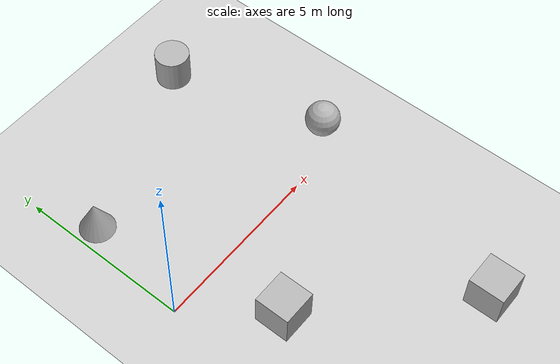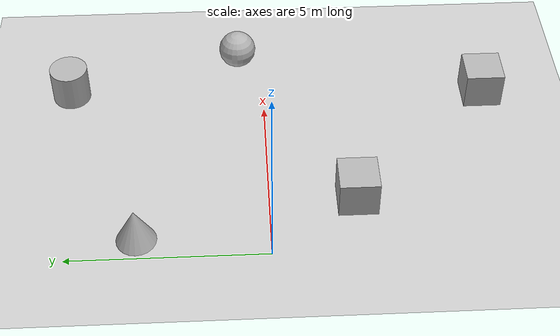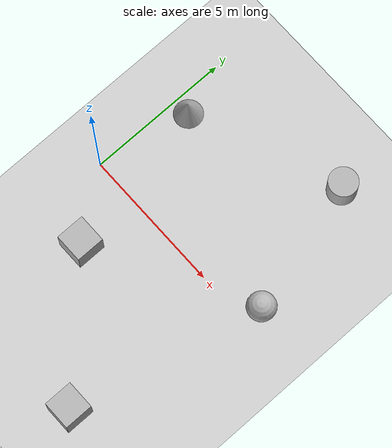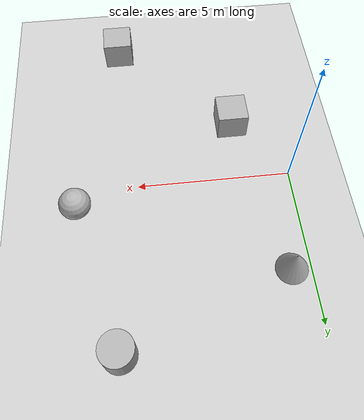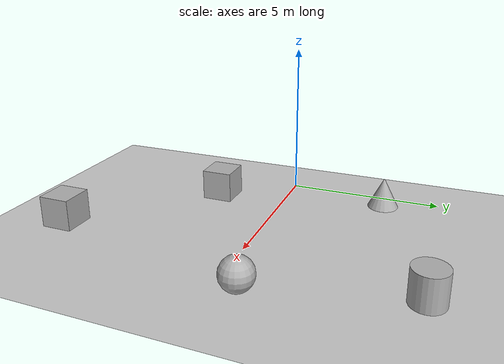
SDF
<sdf version='1.10'>
  <world name='empty'>
    <physics name='1ms' type='ignored'>
      <max_step_size>0.001</max_step_size>
      <real_time_factor>1</real_time_factor>
      <real_time_update_rate>1000</real_time_update_rate>
    </physics>
    <plugin name='gz::sim::systems::Physics' filename='gz-sim-physics-system'/>
    <plugin name='gz::sim::systems::UserCommands' filename='gz-sim-user-commands-system'/>
    <plugin name='gz::sim::systems::SceneBroadcaster' filename='gz-sim-scene-broadcaster-system'/>
    <plugin
      filename="gz-sim-websocket-server-system"
      name="gz::sim::systems::WebsocketServer">
      <port>9002</port>
      <publication_hz>30</publication_hz>
      <max_connections>-1</max_connections>
    </plugin>
    <plugin name='gz::sim::systems::Contact' filename='gz-sim-contact-system'/>
    <plugin name='gz::sim::systems::Sensors' filename='gz-sim-sensors-system'>
      <render_engine>ogre2</render_engine>
    </plugin>
    <gravity>0 0 -9.8000000000000007</gravity>
    <magnetic_field>5.5644999999999998e-06 2.2875799999999999e-05 -4.2388400000000002e-05</magnetic_field>
    <atmosphere type='adiabatic'/>
    <scene>
      <ambient>0.400000006 0.400000006 0.400000006 1</ambient>
      <background>0.699999988 0.699999988 0.699999988 1</background>
      <shadows>true</shadows>
    </scene>
    <model name='ground_plane'>
      <static>true</static>
      <link name='link'>
        <collision name='collision'>
          <geometry>
            <plane>
              <normal>0 0 1</normal>
              <size>100 100</size>
            </plane>
          </geometry>
          <surface>
            <friction>
              <ode>
                <mu>50</mu>
              </ode>
            </friction>
            <bounce/>
            <contact/>
          </surface>
        </collision>
        <visual name='visual'>
          <geometry>
            <plane>
              <normal>0 0 1</normal>
              <size>100 100</size>
            </plane>
          </geometry>
          <material>
            <ambient>0.800000012 0.800000012 0.800000012 1</ambient>
            <diffuse>0.800000012 0.800000012 0.800000012 1</diffuse>
            <specular>0.800000012 0.800000012 0.800000012 1</specular>
          </material>
        </visual>
        <pose>0 0 0 0 0 0</pose>
        <inertial>
          <pose>0 0 0 0 0 0</pose>
          <mass>1</mass>
          <inertia>
            <ixx>1</ixx>
            <ixy>0</ixy>
            <ixz>0</ixz>
            <iyy>1</iyy>
            <iyz>0</iyz>
            <izz>1</izz>
          </inertia>
        </inertial>
        <enable_wind>false</enable_wind>
      </link>
      <pose>0 0 0 0 0 0</pose>
      <self_collide>false</self_collide>
    </model>
    <model name='cylinder'>
      <pose>5.7900381436680632 5.2116743430823211 0.4999999874263219 -1.217613055021823e-18 3.5313229133592656e-19 7.2791870780765451e-20</pose>
      <link name='cylinder_link'>
        <inertial>
          <inertia>
            <ixx>0.14580000000000001</ixx>
            <ixy>0</ixy>
            <ixz>0</ixz>
            <iyy>0.14580000000000001</iyy>
            <iyz>0</iyz>
            <izz>0.125</izz>
          </inertia>
          <mass>1</mass>
          <pose>0 0 0 0 0 0</pose>
        </inertial>
        <collision name='cylinder_collision'>
          <geometry>
            <cylinder>
              <radius>0.5</radius>
              <length>1</length>
            </cylinder>
          </geometry>
          <surface>
            <friction>
              <ode/>
            </friction>
            <bounce/>
            <contact/>
          </surface>
        </collision>
        <visual name='cylinder_visual'>
          <geometry>
            <cylinder>
              <radius>0.5</radius>
              <length>1</length>
            </cylinder>
          </geometry>
          <material>
            <ambient>0.300000012 0.300000012 0.300000012 1</ambient>
            <diffuse>0.699999988 0.699999988 0.699999988 1</diffuse>
            <specular>1 1 1 1</specular>
          </material>
        </visual>
        <pose>0 0 0 0 0 0</pose>
        <enable_wind>false</enable_wind>
      </link>
      <static>false</static>
      <self_collide>false</self_collide>
    </model>
    <model name='sphere'>
      <pose>6.979593969387043 0.6629660412122248 0.5 0 0 0</pose>
      <link name='sphere_link'>
        <inertial>
          <inertia>
            <ixx>0.10000000000000001</ixx>
            <ixy>0</ixy>
            <ixz>0</ixz>
            <iyy>0.10000000000000001</iyy>
            <iyz>0</iyz>
            <izz>0.10000000000000001</izz>
          </inertia>
          <mass>1</mass>
          <pose>0 0 0 0 0 0</pose>
        </inertial>
        <collision name='sphere_collision'>
          <geometry>
            <sphere>
              <radius>0.5</radius>
            </sphere>
          </geometry>
          <surface>
            <friction>
              <ode/>
            </friction>
            <bounce/>
            <contact/>
          </surface>
        </collision>
        <visual name='sphere_visual'>
          <geometry>
            <sphere>
              <radius>0.5</radius>
            </sphere>
          </geometry>
          <material>
            <ambient>0.300000012 0.300000012 0.300000012 1</ambient>
            <diffuse>0.699999988 0.699999988 0.699999988 1</diffuse>
            <specular>1 1 1 1</specular>
          </material>
        </visual>
        <pose>0 0 0 0 0 0</pose>
        <enable_wind>false</enable_wind>
      </link>
      <static>false</static>
      <self_collide>false</self_collide>
    </model>
    <model name='box'>
      <pose>5.3987721116464584 -5.9185194387507698 0.5 0 0 0</pose>
      <link name='box_link'>
        <inertial>
          <inertia>
            <ixx>0.16666</ixx>
            <ixy>0</ixy>
            <ixz>0</ixz>
            <iyy>0.16666</iyy>
            <iyz>0</iyz>
            <izz>0.16666</izz>
          </inertia>
          <mass>1</mass>
          <pose>0 0 0 0 0 0</pose>
        </inertial>
        <collision name='box_collision'>
          <geometry>
            <box>
              <size>1 1 1</size>
            </box>
          </geometry>
          <surface>
            <friction>
              <ode/>
            </friction>
            <bounce/>
            <contact/>
          </surface>
        </collision>
        <visual name='box_visual'>
          <geometry>
            <box>
              <size>1 1 1</size>
            </box>
          </geometry>
          <material>
            <ambient>0.300000012 0.300000012 0.300000012 1</ambient>
            <diffuse>0.699999988 0.699999988 0.699999988 1</diffuse>
            <specular>1 1 1 1</specular>
          </material>
        </visual>
        <pose>0 0 0 0 0 0</pose>
        <enable_wind>false</enable_wind>
      </link>
      <static>false</static>
      <self_collide>false</self_collide>
    </model>
    <model name='cone'>
      <pose>0.59665372702500008 3.2662089192476236 0.5 0 0 0</pose>
      <link name='cone_link'>
        <inertial>
          <inertia>
            <ixx>0.074999999999999997</ixx>
            <ixy>0</ixy>
            <ixz>0</ixz>
            <iyy>0.074999999999999997</iyy>
            <iyz>0</iyz>
            <izz>0.074999999999999997</izz>
          </inertia>
          <mass>1</mass>
          <pose>0 0 0 0 0 0</pose>
        </inertial>
        <collision name='cone_collision'>
          <geometry>
            <cone>
              <radius>0.5</radius>
              <length>1</length>
            </cone>
          </geometry>
          <surface>
            <friction>
              <ode/>
            </friction>
            <bounce/>
            <contact/>
          </surface>
        </collision>
        <visual name='cone_visual'>
          <geometry>
            <cone>
              <radius>0.5</radius>
              <length>1</length>
            </cone>
          </geometry>
          <material>
            <ambient>0.300000012 0.300000012 0.300000012 1</ambient>
            <diffuse>0.699999988 0.699999988 0.699999988 1</diffuse>
            <specular>1 1 1 1</specular>
          </material>
        </visual>
        <pose>0 0 0 0 0 0</pose>
        <enable_wind>false</enable_wind>
      </link>
      <static>false</static>
      <self_collide>false</self_collide>
    </model>
    <model name='box_0'>
      <pose>1.6438447376079948 -2.1938977267809734 0.5 0 0 0</pose>
      <link name='box_link'>
        <inertial>
          <inertia>
            <ixx>0.16666</ixx>
            <ixy>0</ixy>
            <ixz>0</ixz>
            <iyy>0.16666</iyy>
            <iyz>0</iyz>
            <izz>0.16666</izz>
          </inertia>
          <mass>1</mass>
          <pose>0 0 0 0 0 0</pose>
        </inertial>
        <collision name='box_collision'>
          <geometry>
            <box>
              <size>1 1 1</size>
            </box>
          </geometry>
          <surface>
            <friction>
              <ode/>
            </friction>
            <bounce/>
            <contact/>
          </surface>
        </collision>
        <visual name='box_visual'>
          <geometry>
            <box>
              <size>1 1 1</size>
            </box>
          </geometry>
          <material>
            <ambient>0.300000012 0.300000012 0.300000012 1</ambient>
            <diffuse>0.699999988 0.699999988 0.699999988 1</diffuse>
            <specular>1 1 1 1</specular>
          </material>
        </visual>
        <pose>0 0 0 0 0 0</pose>
        <enable_wind>false</enable_wind>
      </link>
      <static>false</static>
      <self_collide>false</self_collide>
    </model>
    <light name='sun' type='directional'>
      <pose>0 0 10 0 0 0</pose>
      <cast_shadows>true</cast_shadows>
      <intensity>1</intensity>
      <direction>-0.5 0.10000000000000001 -0.90000000000000002</direction>
      <diffuse>0.800000012 0.800000012 0.800000012 1</diffuse>
      <specular>0.200000003 0.200000003 0.200000003 1</specular>
      <attenuation>
        <range>1000</range>
        <linear>0.01</linear>
        <constant>0.90000000000000002</constant>
        <quadratic>0.001</quadratic>
      </attenuation>
      <spot>
        <inner_angle>0</inner_angle>
        <outer_angle>0</outer_angle>
        <falloff>0</falloff>
      </spot>
    </light>
  </world>
</sdf>
